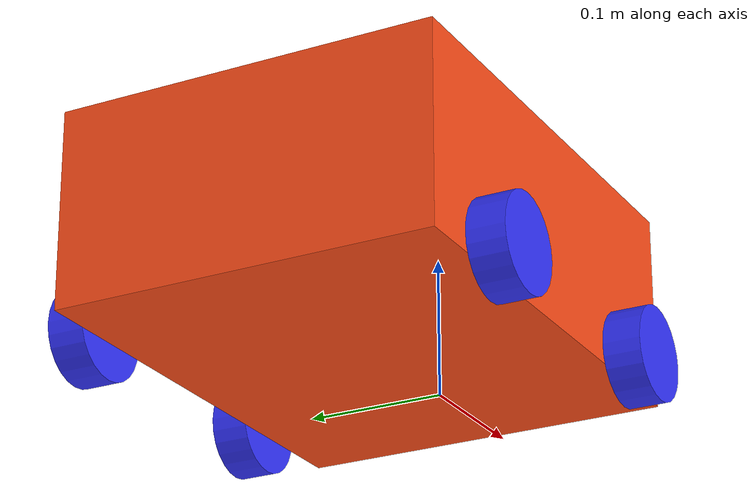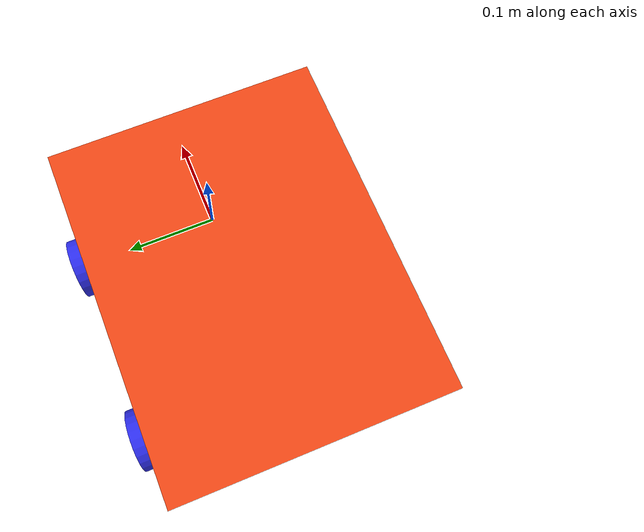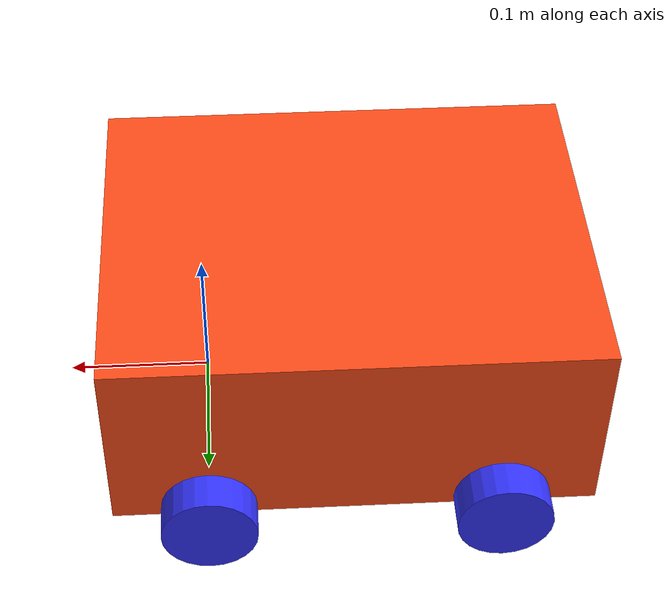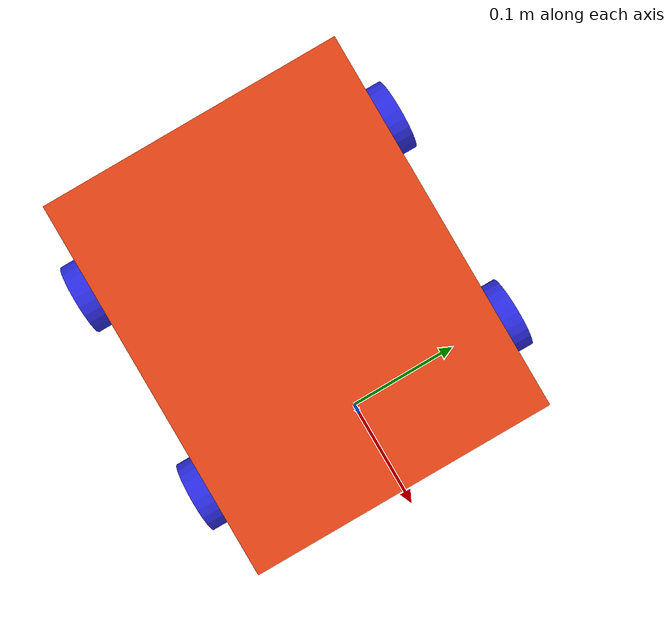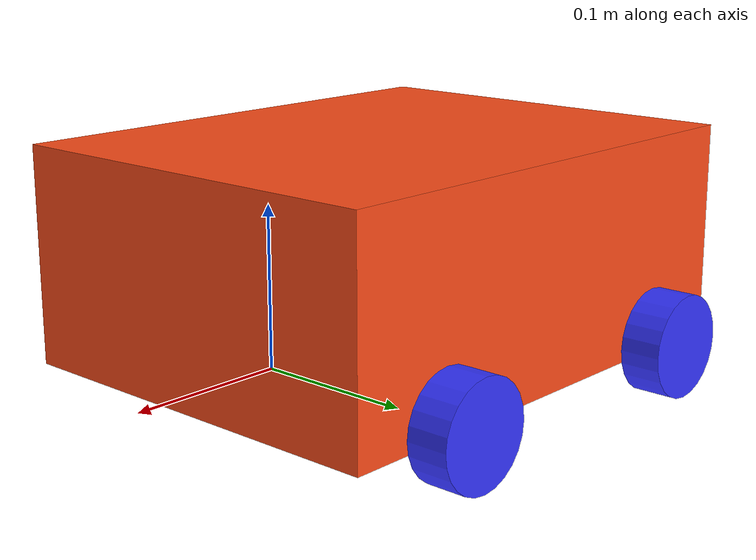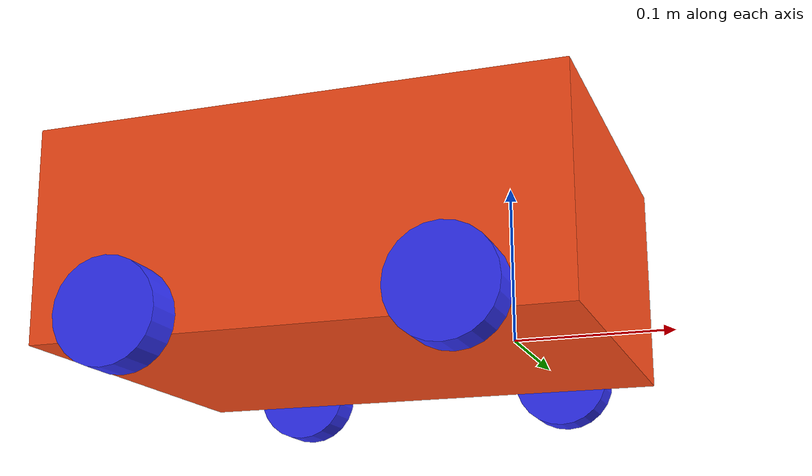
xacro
<?xml version="1.0"?>
<robot xmlns:xacro="http://www.ros.org/wiki/xacro" >

    <xacro:include filename="inertial_macros.xacro"/>

    <xacro:property name="chassis_length" value="0.335"/>
    <xacro:property name="chassis_width" value="0.265"/>
    <xacro:property name="chassis_height" value="0.138"/>
    <xacro:property name="chassis_mass" value="1.0"/>
    <xacro:property name="wheel_radius" value="0.033"/>
    <xacro:property name="wheel_thickness" value="0.026"/>
    <xacro:property name="wheel_mass" value="0.05"/>
    <xacro:property name="wheel_offset_x" value="0.268"/>
    <xacro:property name="wheel_offset_y" value="0.1485"/>
    <xacro:property name="wheel_offset_z" value="0.01"/>
    <xacro:property name="wheel_front_back_distance" value="0.201"/>
    <xacro:property name="caster_wheel_radius" value="0.01"/>
    <xacro:property name="caster_wheel_mass" value="0.01"/>
    <xacro:property name="caster_wheel_offset_x" value="0.075"/>
    <xacro:property name="caster_wheel_offset_z" value="${wheel_offset_z - wheel_radius + caster_wheel_radius}"/>

    <material name="white">
        <color rgba="1 1 1 1" />
    </material>

    <material name="orange">
        <color rgba="1 0.3 0.1 1"/>
    </material>

    <material name="blue">
        <color rgba="0.2 0.2 1 1"/>
    </material>

    <material name="black">
        <color rgba="0 0 0 1"/>
    </material>

    <material name="red">
        <color rgba="1 0 0 1"/>
    </material>

    <!-- BASE LINK -->

    <link name="base_link">

    </link>

    <!-- BASE_FOOTPRINT LINK -->

    <joint name="base_footprint_joint" type="fixed">
        <parent link="base_link"/>
        <child link="base_footprint"/>
        <origin xyz="0 0 0" rpy="0 0 0"/>
    </joint>

    <link name="base_footprint">
    </link>

    <!-- CHASSIS LINK -->

    <joint name="chassis_joint" type="fixed">
        <parent link="base_link"/>
        <child link="chassis"/>
        <origin xyz="${-wheel_offset_x} 0 ${-wheel_offset_z}"/>
    </joint>

    <link name="chassis">
        <visual>
            <origin xyz="${chassis_length/2} 0 ${chassis_height/2}"/>
            <geometry>
                <box size="${chassis_length} ${chassis_width} ${chassis_height}"/>
            </geometry>
            <material name="orange"/>
        </visual>
        <collision>
            <origin xyz="${chassis_length/2} 0 ${chassis_height/2}"/>
            <geometry>
                <box size="${chassis_length} ${chassis_width} ${chassis_height}"/>
            </geometry>
        </collision>
        <xacro:inertial_box mass="0.5" x="${chassis_length}" y="${chassis_width}" z="${chassis_height}">
            <origin xyz="${chassis_length/2} 0 ${chassis_height/2}" rpy="0 0 0"/>
        </xacro:inertial_box>
    </link>

    <gazebo reference="chassis">
        <material>Gazebo/Orange</material>
    </gazebo>

    <!-- FRONT LEFT WHEEL LINK -->

    <joint name="front_left_wheel_joint" type="continuous">
        <parent link="base_link"/>
        <child link="front_left_wheel"/>
        <origin xyz="0 ${wheel_offset_y} 0" rpy="-${pi/2} 0 0" />
        <axis xyz="0 0 1"/>
    </joint>

    <link name="front_left_wheel">
        <visual>
            <geometry>
                <cylinder radius="${wheel_radius}" length="${wheel_thickness}"/>
            </geometry>
            <material name="blue"/>
        </visual>
        <collision>
            <geometry>
                <sphere radius="${wheel_radius}"/>
            </geometry>
        </collision>
        <xacro:inertial_cylinder mass="${wheel_mass}" length="${wheel_thickness}" radius="${wheel_radius}">
            <origin xyz="0 0 0" rpy="0 0 0"/>
        </xacro:inertial_cylinder>
    </link>

    <gazebo reference="front_left_wheel">
        <material>Gazebo/Blue</material>
    </gazebo>

    <!--  FRONT RIGHT WHEEL LINK -->

    <joint name="front_right_wheel_joint" type="continuous">
        <parent link="base_link"/>
        <child link="front_right_wheel"/>
        <origin xyz="0 ${-wheel_offset_y} 0" rpy="${pi/2} 0 0" />
        <axis xyz="0 0 -1"/>
    </joint>

    <link name="front_right_wheel">
        <visual>
            <geometry>
                <cylinder radius="${wheel_radius}" length="${wheel_thickness}"/>
            </geometry>
            <material name="blue"/>
        </visual>
        <collision>
            <geometry>
                <sphere radius="${wheel_radius}"/>
            </geometry>
        </collision>
        <xacro:inertial_cylinder mass="${wheel_mass}" length="${wheel_thickness}" radius="${wheel_radius}">
            <origin xyz="0 0 0" rpy="0 0 0"/>
        </xacro:inertial_cylinder>
    </link>

    <gazebo reference="front_right_wheel">
        <material>Gazebo/Blue</material>
    </gazebo>

    <!-- BACK LEFT WHEEL LINK -->

    <joint name="back_left_wheel_joint" type="continuous">
        <parent link="base_link"/>
        <child link="back_left_wheel"/>
        <origin xyz="${-wheel_front_back_distance} ${wheel_offset_y} 0" rpy="-${pi/2} 0 0" />
        <axis xyz="0 0 1"/>
    </joint>

    <link name="back_left_wheel">
        <visual>
            <geometry>
                <cylinder radius="${wheel_radius}" length="${wheel_thickness}"/>
            </geometry>
            <material name="blue"/>
        </visual>
        <collision>
            <geometry>
                <sphere radius="${wheel_radius}"/>
            </geometry>
        </collision>
        <xacro:inertial_cylinder mass="${wheel_mass}" length="${wheel_thickness}" radius="${wheel_radius}">
            <origin xyz="0 0 0" rpy="0 0 0"/>
        </xacro:inertial_cylinder>
    </link>

    <gazebo reference="back_left_wheel">
        <material>Gazebo/Blue</material>
    </gazebo>

    <!--  BACK RIGHT WHEEL LINK -->

    <joint name="back_right_wheel_joint" type="continuous">
        <parent link="base_link"/>
        <child link="back_right_wheel"/>
        <origin xyz="${-wheel_front_back_distance} ${-wheel_offset_y} 0" rpy="${pi/2} 0 0" />
        <axis xyz="0 0 -1"/>
    </joint>

    <link name="back_right_wheel">
        <visual>
            <geometry>
                <cylinder radius="${wheel_radius}" length="${wheel_thickness}"/>
            </geometry>
            <material name="blue"/>
        </visual>
        <collision>
            <geometry>
                <sphere radius="${wheel_radius}"/>
            </geometry>
        </collision>
        <xacro:inertial_cylinder mass="${wheel_mass}" length="${wheel_thickness}" radius="${wheel_radius}">
            <origin xyz="0 0 0" rpy="0 0 0"/>
        </xacro:inertial_cylinder>
    </link>

    <gazebo reference="back_right_wheel">
        <material>Gazebo/Blue</material>
    </gazebo>

    <!-- CASTER WHEEL LINK -->

</robot>
